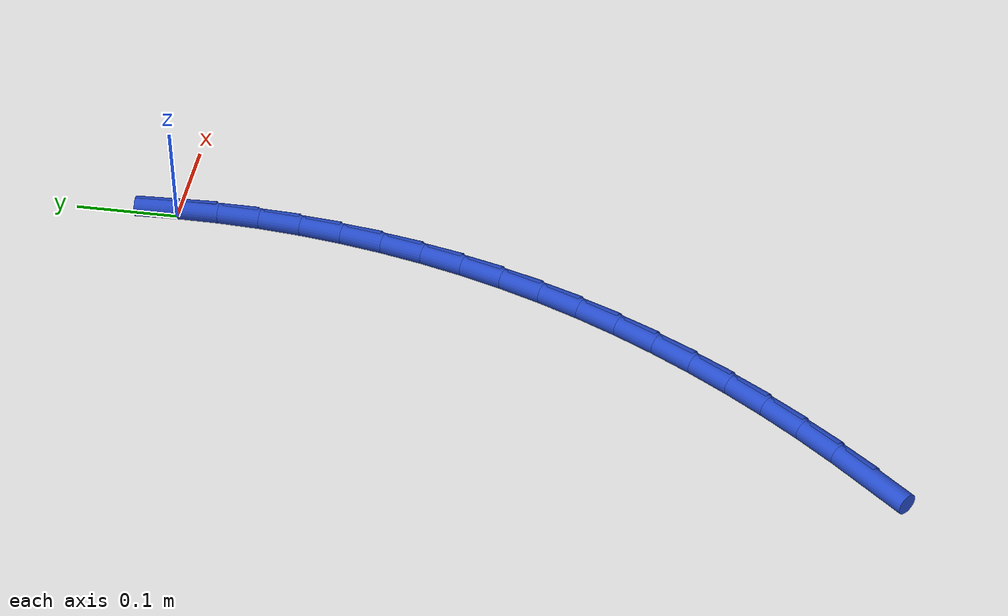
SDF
<sdf version="1.6">
 <world name="default">
  <model name="ground_plane">
   <static>1</static>
   <link name="link">
    <collision name="collision">
     <geometry><plane><normal>0 0 1</normal><size>100 100</size></plane></geometry>
     <surface><friction><ode><mu>100</mu><mu2>50</mu2></ode></friction></surface>
    </collision>
    <visual name="visual">
     <cast_shadows>0</cast_shadows>
     <geometry><plane><normal>0 0 1</normal><size>100 100</size></plane></geometry>
     <material>
      <script><uri>file://media/materials/scripts/gazebo.material</uri><name>Gazebo/WhiteGlow</name></script>
     </material>
    </visual>
   </link>
  </model>
  <model name="line">
   <link name="link_0">
    <pose>1.3877787807814457e-17 -1.1102230246251565e-16 0.01 0 1.57 -1.5345548613819546</pose>
    <collision name="collision">
     <geometry><cylinder><radius>0.01</radius><length>0.08</length></cylinder></geometry>
    </collision>
    <visual name="visual">
     <material>
      <script><name>Gazebo/Blue</name><uri>file://media/materials/scripts/gazebo.material</uri></script>
     </material>
     <geometry><cylinder><radius>0.01</radius><length>0.08</length></cylinder></geometry>
    </visual>
   </link>
   <link name="link_142">
    <pose>-0.27015590145988194 -0.6825210102346115 0.01 0 1.57 0.8552737298266043</pose>
    <collision name="collision">
     <geometry><cylinder><radius>0.01</radius><length>0.08</length></cylinder></geometry>
    </collision>
    <visual name="visual">
     <material>
      <script><name>Gazebo/Blue</name><uri>file://media/materials/scripts/gazebo.material</uri></script>
     </material>
     <geometry><cylinder><radius>0.01</radius><length>0.08</length></cylinder></geometry>
    </visual>
   </link>
   <link name="link_143">
    <pose>-0.24295390629280866 -0.6512247506682187 0.01 0 1.57 0.8900698967580495</pose>
    <collision name="collision">
     <geometry><cylinder><radius>0.01</radius><length>0.08</length></cylinder></geometry>
    </collision>
    <visual name="visual">
     <material>
      <script><name>Gazebo/Blue</name><uri>file://media/materials/scripts/gazebo.material</uri></script>
     </material>
     <geometry><cylinder><radius>0.01</radius><length>0.08</length></cylinder></geometry>
    </visual>
   </link>
   <link name="link_144">
    <pose>-0.2167782895102618 -0.6189037296311123 0.01 0 1.57 0.9257648385986111</pose>
    <collision name="collision">
     <geometry><cylinder><radius>0.01</radius><length>0.08</length></cylinder></geometry>
    </collision>
    <visual name="visual">
     <material>
      <script><name>Gazebo/Blue</name><uri>file://media/materials/scripts/gazebo.material</uri></script>
     </material>
     <geometry><cylinder><radius>0.01</radius><length>0.08</length></cylinder></geometry>
    </visual>
   </link>
   <link name="link_145">
    <pose>-0.1917163230694859 -0.5855940972773567 0.01 0 1.57 0.9624724325712762</pose>
    <collision name="collision">
     <geometry><cylinder><radius>0.01</radius><length>0.08</length></cylinder></geometry>
    </collision>
    <visual name="visual">
     <material>
      <script><name>Gazebo/Blue</name><uri>file://media/materials/scripts/gazebo.material</uri></script>
     </material>
     <geometry><cylinder><radius>0.01</radius><length>0.08</length></cylinder></geometry>
    </visual>
   </link>
   <link name="link_146">
    <pose>-0.16785527892772506 -0.5513320037610158 0.01 0 1.57 1.0003008499790629</pose>
    <collision name="collision">
     <geometry><cylinder><radius>0.01</radius><length>0.08</length></cylinder></geometry>
    </collision>
    <visual name="visual">
     <material>
      <script><name>Gazebo/Blue</name><uri>file://media/materials/scripts/gazebo.material</uri></script>
     </material>
     <geometry><cylinder><radius>0.01</radius><length>0.08</length></cylinder></geometry>
    </visual>
   </link>
   <link name="link_147">
    <pose>-0.14528242904222483 -0.5161535992361561 0.01 0 1.57 1.0393512169735657</pose>
    <collision name="collision">
     <geometry><cylinder><radius>0.01</radius><length>0.08</length></cylinder></geometry>
    </collision>
    <visual name="visual">
     <material>
      <script><name>Gazebo/Blue</name><uri>file://media/materials/scripts/gazebo.material</uri></script>
     </material>
     <geometry><cylinder><radius>0.01</radius><length>0.08</length></cylinder></geometry>
    </visual>
   </link>
   <link name="link_148">
    <pose>-0.12408504537022921 -0.48009503385684105 0.01 0 1.57 1.0797157846396297</pose>
    <collision name="collision">
     <geometry><cylinder><radius>0.01</radius><length>0.08</length></cylinder></geometry>
    </collision>
    <visual name="visual">
     <material>
      <script><name>Gazebo/Blue</name><uri>file://media/materials/scripts/gazebo.material</uri></script>
     </material>
     <geometry><cylinder><radius>0.01</radius><length>0.08</length></cylinder></geometry>
    </visual>
   </link>
   <link name="link_149">
    <pose>-0.1043503998689828 -0.44319245777713573 0.01 0 1.57 1.121475589531976</pose>
    <collision name="collision">
     <geometry><cylinder><radius>0.01</radius><length>0.08</length></cylinder></geometry>
    </collision>
    <visual name="visual">
     <material>
      <script><name>Gazebo/Blue</name><uri>file://media/materials/scripts/gazebo.material</uri></script>
     </material>
     <geometry><cylinder><radius>0.01</radius><length>0.08</length></cylinder></geometry>
    </visual>
   </link>
   <link name="link_150">
    <pose>-0.08616576449573023 -0.4054820211511046 0.01 0 1.57 1.164676119832094</pose>
    <collision name="collision">
     <geometry><cylinder><radius>0.01</radius><length>0.08</length></cylinder></geometry>
    </collision>
    <visual name="visual">
     <material>
      <script><name>Gazebo/Blue</name><uri>file://media/materials/scripts/gazebo.material</uri></script>
     </material>
     <geometry><cylinder><radius>0.01</radius><length>0.08</length></cylinder></geometry>
    </visual>
   </link>
   <link name="link_151">
    <pose>-0.06961770993524594 -0.3670005219764363 0.01 0 1.57 1.2085718428500676</pose>
    <collision name="collision">
     <geometry><cylinder><radius>0.01</radius><length>0.08</length></cylinder></geometry>
    </collision>
    <visual name="visual">
     <material>
      <script><name>Gazebo/Blue</name><uri>file://media/materials/scripts/gazebo.material</uri></script>
     </material>
     <geometry><cylinder><radius>0.01</radius><length>0.08</length></cylinder></geometry>
    </visual>
   </link>
   <link name="link_152">
    <pose>-0.05476636383065391 -0.32780918663875735 0.01 0 1.57 1.2522403797698196</pose>
    <collision name="collision">
     <geometry><cylinder><radius>0.01</radius><length>0.08</length></cylinder></geometry>
    </collision>
    <visual name="visual">
     <material>
      <script><name>Gazebo/Blue</name><uri>file://media/materials/scripts/gazebo.material</uri></script>
     </material>
     <geometry><cylinder><radius>0.01</radius><length>0.08</length></cylinder></geometry>
    </visual>
   </link>
   <link name="link_153">
    <pose>-0.04163796977096202 -0.28800054400506786 0.01 0 1.57 1.2957509479088238</pose>
    <collision name="collision">
     <geometry><cylinder><radius>0.01</radius><length>0.08</length></cylinder></geometry>
    </collision>
    <visual name="visual">
     <material>
      <script><name>Gazebo/Blue</name><uri>file://media/materials/scripts/gazebo.material</uri></script>
     </material>
     <geometry><cylinder><radius>0.01</radius><length>0.08</length></cylinder></geometry>
    </visual>
   </link>
   <link name="link_154">
    <pose>-0.030256553129856836 -0.24766917215535647 0.01 0 1.57 1.3392422127959052</pose>
    <collision name="collision">
     <geometry><cylinder><radius>0.01</radius><length>0.08</length></cylinder></geometry>
    </collision>
    <visual name="visual">
     <material>
      <script><name>Gazebo/Blue</name><uri>file://media/materials/scripts/gazebo.material</uri></script>
     </material>
     <geometry><cylinder><radius>0.01</radius><length>0.08</length></cylinder></geometry>
    </visual>
   </link>
   <link name="link_155">
    <pose>-0.020646139281025058 -0.20690964916961213 0.01 0 1.57 1.382853596041673</pose>
    <collision name="collision">
     <geometry><cylinder><radius>0.01</radius><length>0.08</length></cylinder></geometry>
    </collision>
    <visual name="visual">
     <material>
      <script><name>Gazebo/Blue</name><uri>file://media/materials/scripts/gazebo.material</uri></script>
     </material>
     <geometry><cylinder><radius>0.01</radius><length>0.08</length></cylinder></geometry>
    </visual>
   </link>
   <link name="link_156">
    <pose>-0.012830753598153196 -0.16581655312782267 0.01 0 1.57 1.4267245774039607</pose>
    <collision name="collision">
     <geometry><cylinder><radius>0.01</radius><length>0.08</length></cylinder></geometry>
    </collision>
    <visual name="visual">
     <material>
      <script><name>Gazebo/Blue</name><uri>file://media/materials/scripts/gazebo.material</uri></script>
     </material>
     <geometry><cylinder><radius>0.01</radius><length>0.08</length></cylinder></geometry>
    </visual>
   </link>
   <link name="link_157">
    <pose>-0.006834421454928205 -0.12448446210997843 0.01 0 1.57 1.4709939384885589</pose>
    <collision name="collision">
     <geometry><cylinder><radius>0.01</radius><length>0.08</length></cylinder></geometry>
    </collision>
    <visual name="visual">
     <material>
      <script><name>Gazebo/Blue</name><uri>file://media/materials/scripts/gazebo.material</uri></script>
     </material>
     <geometry><cylinder><radius>0.01</radius><length>0.08</length></cylinder></geometry>
    </visual>
   </link>
   <link name="link_158">
    <pose>-0.0026811682250365617 -0.08300795419606743 0.01 0 1.57 1.5157988692596644</pose>
    <collision name="collision">
     <geometry><cylinder><radius>0.01</radius><length>0.08</length></cylinder></geometry>
    </collision>
    <visual name="visual">
     <material>
      <script><name>Gazebo/Blue</name><uri>file://media/materials/scripts/gazebo.material</uri></script>
     </material>
     <geometry><cylinder><radius>0.01</radius><length>0.08</length></cylinder></geometry>
    </visual>
   </link>
   <link name="link_159">
    <pose>-0.0003950192821649415 -0.04148160746607849 0.01 0 1.57 1.5612738572850395</pose>
    <collision name="collision">
     <geometry><cylinder><radius>0.01</radius><length>0.08</length></cylinder></geometry>
    </collision>
    <visual name="visual">
     <material>
      <script><name>Gazebo/Blue</name><uri>file://media/materials/scripts/gazebo.material</uri></script>
     </material>
     <geometry><cylinder><radius>0.01</radius><length>0.08</length></cylinder></geometry>
    </visual>
   </link>
   <link name="link_160">
    <pose>1.214306433183765e-17 -3.0531133177191805e-16 0.01 0 1.57 -1.5340433740676611</pose>
    <collision name="collision">
     <geometry><cylinder><radius>0.01</radius><length>0.08</length></cylinder></geometry>
    </collision>
    <visual name="visual">
     <material>
      <script><name>Gazebo/Blue</name><uri>file://media/materials/scripts/gazebo.material</uri></script>
     </material>
     <geometry><cylinder><radius>0.01</radius><length>0.08</length></cylinder></geometry>
    </visual>
   </link>
  </model>
 </world>
</sdf>
